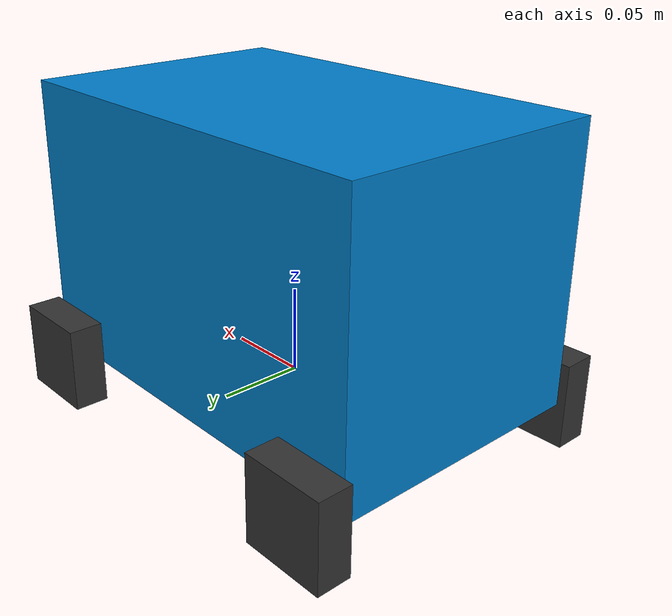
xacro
<?xml version = "1.0"?>
<robot name="car_model" xmlns:xacro="http://www.ros.org/wiki/xacro">

  <xacro:property name="PI" value="3.1415926"/>
  <xacro:property name="car_mass" value="1.0" />
  <xacro:property name="car_a" value="0.25" />
  <xacro:property name="car_b" value="0.16" />
  <xacro:property name="car_c" value="0.16" />
  <xacro:property name="wheel_mass" value="0.1" />
  <xacro:property name="wheel_lenth" value="0.02" />
  <xacro:property name="wheel_radius" value="0.025" />
  <xacro:property name="column_width" value="0.02" />
  <xacro:property name="column_height1" value="0.05" />
  <xacro:property name="column_height2" value="0.2" />
  <xacro:property name="column_height3" value="0.05" />
  <xacro:property name="column_mass" value="0.1" />
  <xacro:property name="camera_width" value="0.025" />

  <link name="world_link">
  </link>

  <link name="car_body">

    <collision>
      <origin
        xyz="0 0 ${car_c/2}"
        rpy="0 0 0" />
      <geometry>
        <box size="${car_a} ${car_b} ${car_c}" />
      </geometry>
    </collision>

    <visual>
      <origin
        xyz="0 0 ${car_c/2}"
        rpy="0 0 0" />
      <geometry>
        <box size="${car_a} ${car_b} ${car_c}" />
      </geometry>
      <material name="blue">
        <color rgba="0 0.5 0.8 1"/>
      </material>
    </visual>

    <inertial>
      <origin
        xyz="0 0 ${car_c/2}"
        rpy="0 0 0" />
      <mass value="${car_mass}" />
      <inertia
        ixx="${car_mass / 12.0 * (car_b*car_b + car_c*car_c)}"
        ixy="0.0"
        ixz="0.0"
        iyy="${car_mass / 12.0 * (car_a*car_a + car_c*car_c)}"
        iyz="0.0"
        izz="${car_mass / 12.0 * (car_a*car_a + car_b*car_b)}" />
    </inertial>

  </link>

  <joint name="joint_world" type="fixed">
    <parent link="world_link" />
    <child link="car_body" />
  </joint>

  <link name="right_front_wheel">

    <collision>
      <origin
        xyz="0 0 0"
        rpy="0 0 0" />
      <geometry>
        <cylinder length="${wheel_lenth}" radius="${wheel_radius}" />
      </geometry>
      <surface>
        <friction>
          <ode>
            <mu>0</mu>
            <mu2>0</mu2>
            <slip1>1.0</slip1>
            <slip2>1.0</slip2>
          </ode>
        </friction>
      </surface>
    </collision>

    <inertial>
      <origin
        xyz="0 0 0"
        rpy="0 0 0" />
      <mass value="${wheel_mass}" />
      <inertia
        ixx="${wheel_mass / 12.0 * (wheel_lenth*wheel_lenth + wheel_lenth*wheel_lenth)}"
        ixy="0.0"
        ixz="0.0"
        iyy="${wheel_mass / 12.0 * (wheel_radius*wheel_radius + wheel_lenth*wheel_lenth)}"
        iyz="0.0"
        izz="${wheel_mass / 12.0 * (wheel_radius*wheel_radius + wheel_lenth*wheel_lenth)}" />
    </inertial>

    <visual>
      <geometry>
        <box size="${wheel_radius*2} ${wheel_radius*2} ${wheel_lenth}" />
      </geometry>
      <material name="grey">
        <color rgba="0.2 0.2 0.2 1.0"/>
      </material>
    </visual>

  </link>

  <joint name="joint_right_front_wheel" type="continuous">
    <axis xyz="0 0 1" rpy="0 0 0" />
    <parent link="car_body" />
    <child link="right_front_wheel" />
    <origin rpy="0 ${PI/2} ${PI/2}" xyz="${car_a/2-0.02} ${-car_b/2-0.01} 0" />
    <limit effort="100" velocity="100" />
    <joint_properties damping="0" friction="0" />
  </joint>

  <link name="right_back_wheel">

    <collision>
      <origin
        xyz="0 0 0"
        rpy="0 0 0" />
      <geometry>
        <cylinder length="${wheel_lenth}" radius="${wheel_radius}" />
      </geometry>
      <surface>
        <friction>
          <ode>
            <mu>0</mu>
            <mu2>0</mu2>
            <slip1>1.0</slip1>
            <slip2>1.0</slip2>
          </ode>
        </friction>
      </surface>
    </collision>

    <inertial>
      <origin
        xyz="0 0 0"
        rpy="0 0 0" />
      <mass value="${wheel_mass}" />
      <inertia
        ixx="${wheel_mass / 12.0 * (wheel_lenth*wheel_lenth + wheel_lenth*wheel_lenth)}"
        ixy="0.0"
        ixz="0.0"
        iyy="${wheel_mass / 12.0 * (wheel_radius*wheel_radius + wheel_lenth*wheel_lenth)}"
        iyz="0.0"
        izz="${wheel_mass / 12.0 * (wheel_radius*wheel_radius + wheel_lenth*wheel_lenth)}" />
    </inertial>

    <visual>
      <geometry>
        <box size="${wheel_radius*2} ${wheel_radius*2} ${wheel_lenth}" />
      </geometry>
      <material name="grey">
        <color rgba="0.2 0.2 0.2 1.0"/>
      </material>
    </visual>

  </link>

  <!-- Camera -->
  <joint name="joint_right_back_wheel" type="continuous">
    <axis xyz="0 0 1" rpy="0 0 0" />
    <parent link="car_body" />
    <child link="right_back_wheel" />
    <origin rpy="0 ${PI/2} ${PI/2}" xyz="${-car_a/2+0.02} ${-car_b/2-0.01} 0" />
    <limit effort="100" velocity="100" />
    <joint_properties damping="0" friction="0" />
  </joint>

  <link name="left_front_wheel">

    <collision>
      <origin
        xyz="0 0 0"
        rpy="0 0 0" />
      <geometry>
        <cylinder length="${wheel_lenth}" radius="${wheel_radius}" />
      </geometry>
      <surface>
        <friction>
          <ode>
            <mu>0</mu>
            <mu2>0</mu2>
            <slip1>1.0</slip1>
            <slip2>1.0</slip2>
          </ode>
        </friction>
      </surface>
    </collision>

    <inertial>
      <origin
        xyz="0 0 0"
        rpy="0 0 0" />
      <mass value="${wheel_mass}" />
      <inertia
        ixx="${wheel_mass / 12.0 * (wheel_lenth*wheel_lenth + wheel_lenth*wheel_lenth)}"
        ixy="0.0"
        ixz="0.0"
        iyy="${wheel_mass / 12.0 * (wheel_radius*wheel_radius + wheel_lenth*wheel_lenth)}"
        iyz="0.0"
        izz="${wheel_mass / 12.0 * (wheel_radius*wheel_radius + wheel_lenth*wheel_lenth)}" />
    </inertial>

    <visual>
      <geometry>
        <box size="${wheel_radius*2} ${wheel_radius*2} ${wheel_lenth}" />
      </geometry>
      <material name="grey">
        <color rgba="0.2 0.2 0.2 1.0"/>
      </material>
    </visual>

  </link>

  <joint name="joint_left_front_wheel" type="continuous">
    <axis xyz="0 0 1" rpy="0 0 0" />
    <parent link="car_body" />
    <child link="left_front_wheel" />
    <origin rpy="0 ${PI/2} ${PI/2}" xyz="${car_a/2-0.02} ${car_b/2+0.01} 0" />
    <limit effort="100" velocity="100" />
    <joint_properties damping="0" friction="0" />
  </joint>

  <link name="left_back_wheel">

    <collision>
      <origin
        xyz="0 0 0"
        rpy="0 0 0" />
      <geometry>
        <cylinder length="${wheel_lenth}" radius="${wheel_radius}" />
      </geometry>
      <surface>
        <friction>
          <ode>
            <mu>0</mu>
            <mu2>0</mu2>
            <slip1>1.0</slip1>
            <slip2>1.0</slip2>
          </ode>
        </friction>
      </surface>
    </collision>

    <inertial>
      <origin
        xyz="0 0 0"
        rpy="0 0 0" />
      <mass value="${wheel_mass}" />
      <inertia
        ixx="${wheel_mass / 12.0 * (wheel_lenth*wheel_lenth + wheel_lenth*wheel_lenth)}"
        ixy="0.0"
        ixz="0.0"
        iyy="${wheel_mass / 12.0 * (wheel_radius*wheel_radius + wheel_lenth*wheel_lenth)}"
        iyz="0.0"
        izz="${wheel_mass / 12.0 * (wheel_radius*wheel_radius + wheel_lenth*wheel_lenth)}" />
    </inertial>

    <visual>
      <geometry>
        <box size="${wheel_radius*2} ${wheel_radius*2} ${wheel_lenth}" />
      </geometry>
      <material name="grey">
        <color rgba="0.2 0.2 0.2 1.0"/>
      </material>
    </visual>

  </link>

  <joint name="joint_left_back_wheel" type="continuous">
    <axis xyz="0 0 1" rpy="0 0 0" />
    <parent link="car_body" />
    <child link="left_back_wheel" />
    <origin rpy="0 ${PI/2} ${PI/2}" xyz="${-car_a/2+0.02} ${car_b/2+0.01} 0" />
    <limit effort="100" velocity="100" />
    <joint_properties damping="0" friction="0" />
  </joint>

  <gazebo reference="world_link">
    <material>Gazebo/Yellow</material>
  </gazebo>
  <gazebo reference="car_body">
    <material>Gazebo/Gray</material>
  </gazebo>
  <gazebo reference="right_front_wheel">
    <mu1>0.2</mu1>
    <mu2>0.2</mu2>
    <material>Gazebo/Orange</material>
  </gazebo>
  <gazebo reference="right_back_wheel">
    <mu1>0.2</mu1>
    <mu2>0.2</mu2>
    <material>Gazebo/Orange</material>
  </gazebo>
  <gazebo reference="left_front_wheel">
    <mu1>0.2</mu1>
    <mu2>0.2</mu2>
    <material>Gazebo/Orange</material>
  </gazebo>
  <gazebo reference="left_back_wheel">
    <mu1>0.2</mu1>
    <mu2>0.2</mu2>
    <material>Gazebo/Orange</material>
  </gazebo>

  <transmission name="tran_right_front_wheel">
    <type>transmission_interface/SimpleTransmission</type>
    <joint name="joint_right_front_wheel">
      <hardwareInterface>hardware_interface/EffortJointInterface</hardwareInterface>
    </joint>
    <actuator name="motor_right_front_wheel">
      <hardwareInterface>hardware_interface/EffortJointInterface</hardwareInterface>
      <mechanicalReduction>1</mechanicalReduction>
    </actuator>
  </transmission>

  <transmission name="tran_right_back_wheel">
    <type>transmission_interface/SimpleTransmission</type>
    <joint name="joint_right_back_wheel">
      <hardwareInterface>hardware_interface/EffortJointInterface</hardwareInterface>
    </joint>
    <actuator name="motor_right_back_wheel">
      <hardwareInterface>hardware_interface/EffortJointInterface</hardwareInterface>
      <mechanicalReduction>1</mechanicalReduction>
    </actuator>
  </transmission>

  <transmission name="tran_left_front_wheel">
    <type>transmission_interface/SimpleTransmission</type>
    <joint name="joint_left_front_wheel">
      <hardwareInterface>hardware_interface/EffortJointInterface</hardwareInterface>
    </joint>
    <actuator name="motor_left_front_wheel">
      <hardwareInterface>hardware_interface/EffortJointInterface</hardwareInterface>
      <mechanicalReduction>1</mechanicalReduction>
    </actuator>
  </transmission>

  <transmission name="tran_left_back_wheel">
    <type>transmission_interface/SimpleTransmission</type>
    <joint name="joint_left_back_wheel">
      <hardwareInterface>hardware_interface/EffortJointInterface</hardwareInterface>
    </joint>
    <actuator name="motor_left_back_wheel">
      <hardwareInterface>hardware_interface/EffortJointInterface</hardwareInterface>
      <mechanicalReduction>1</mechanicalReduction>
    </actuator>
  </transmission>

  <gazebo>
    <plugin name="skid_steer_drive_controller"
      filename="libgazebo_ros_skid_steer_drive.so">
      <alwaysOn>true</alwaysOn>
      <updateRate>100.0</updateRate>
      <robotNamespace>/</robotNamespace>
      <rightFrontJoint>joint_right_front_wheel</rightFrontJoint>
      <rightRearJoint>joint_right_back_wheel</rightRearJoint>
      <leftFrontJoint>joint_left_front_wheel</leftFrontJoint>
      <leftRearJoint>joint_left_back_wheel</leftRearJoint>
      <wheelSeparation>${car_b}</wheelSeparation>
      <wheelDiameter>${wheel_radius*2}</wheelDiameter>
      <commandTopic>cmd_car</commandTopic>
      <odometryTopic>odom</odometryTopic>
      <robotBaseFrame>world_link</robotBaseFrame>
      <odometryFrame>odom</odometryFrame>
      <covariance_x>0.000100</covariance_x>
      <covariance_y>0.000100</covariance_y>
      <covariance_yaw>0.010000</covariance_yaw>
      <torque>1</torque>
      <topicName>cmd_car</topicName>
      <broadcastTF>1</broadcastTF>
    </plugin>
  </gazebo>

  <gazebo>
    <plugin name="gazebo_ros_control"
      filename="libgazebo_ros_control.so">
      <robotNamespace>/car_model</robotNamespace>
      <robotSimType>gazebo_ros_control/DefaultRobotHWSim</robotSimType>
      <legacyModeNS>true</legacyModeNS>
    </plugin>
  </gazebo>

</robot>
